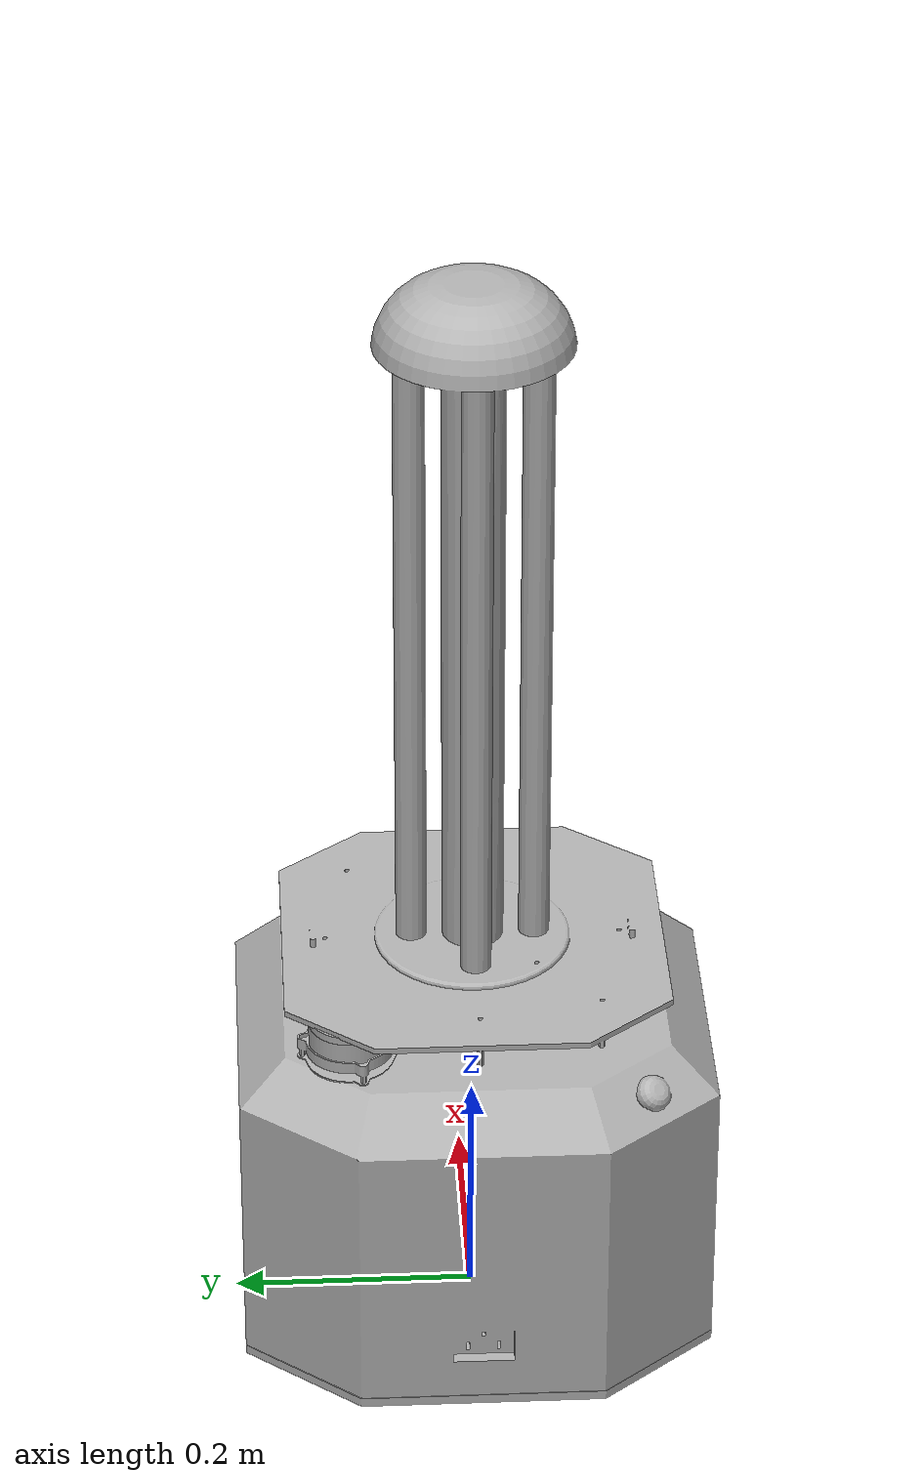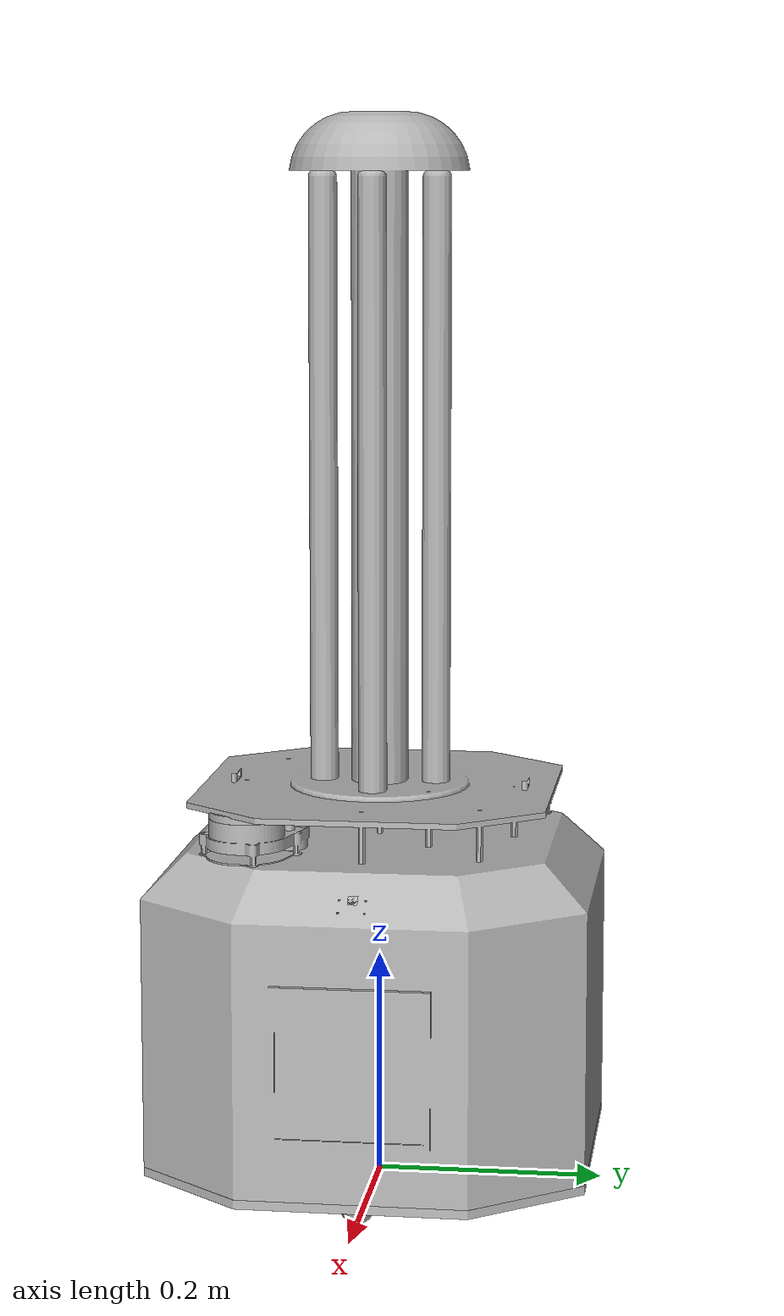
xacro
<?xml version="1.0" ?>
<robot name="uvbot" xmlns:xacro="http://www.ros.org/wiki/xacro">

<xacro:include filename="$(find uvbot_description)/urdf/materials.xacro" />
<xacro:include filename="$(find uvbot_description)/urdf/uvbot.trans" />
<xacro:include filename="$(find uvbot_description)/urdf/uvbot.gazebo" />
<link name="base_link">
  <inertial>
    <origin rpy="0 0 0" xyz="-0.0014212133130561632 -0.00011343264987574764 0.028000406327663995"/>
    <mass value="1.1101034043197626"/>
    <inertia ixx="0.011883" ixy="0.0" ixz="0.0" iyy="0.012525" iyz="0.0" izz="0.02436"/>
  </inertial>
  <visual>
    <origin rpy="0 0 0" xyz="0 0 0"/>
    <geometry>
      <mesh filename="package://uvbot_description/meshes/base_link.stl" scale="0.001 0.001 0.001"/>
    </geometry>
    <material name="silver"/>
  </visual>
  <collision>
    <origin rpy="0 0 0" xyz="0 0 0"/>
    <geometry>
      <mesh filename="package://uvbot_description/meshes/base_link.stl" scale="0.001 0.001 0.001"/>
    </geometry>
  </collision>
</link>

<link name="motor_r_1">
  <inertial>
    <origin rpy="0 0 0" xyz="-2.1330980819948657e-07 0.03894347279223513 -0.008999969522538974"/>
    <mass value="0.5157784078443187"/>
    <inertia ixx="0.000382" ixy="0.0" ixz="0.0" iyy="6e-05" iyz="0.0" izz="0.000382"/>
  </inertial>
  <visual>
    <origin rpy="0 0 0" xyz="0.001421 0.112243 -0.059"/>
    <geometry>
      <mesh filename="package://uvbot_description/meshes/motor_r_1.stl" scale="0.001 0.001 0.001"/>
    </geometry>
    <material name="silver"/>
  </visual>
  <collision>
    <origin rpy="0 0 0" xyz="0.001421 0.112243 -0.059"/>
    <geometry>
      <mesh filename="package://uvbot_description/meshes/motor_r_1.stl" scale="0.001 0.001 0.001"/>
    </geometry>
  </collision>
</link>

<link name="wheel_r_1">
  <inertial>
    <origin rpy="0 0 0" xyz="-2.1330981184132167e-07 0.002157535436141389 3.04774533041452e-08"/>
    <mass value="0.12093530699476142"/>
    <inertia ixx="0.000105" ixy="0.0" ixz="0.0" iyy="0.000198" iyz="-0.0" izz="0.000105"/>
  </inertial>
  <visual>
    <origin rpy="0 0 0" xyz="0.001421 0.135243 -0.05"/>
    <geometry>
      <mesh filename="package://uvbot_description/meshes/wheel_r_1.stl" scale="0.001 0.001 0.001"/>
    </geometry>
    <material name="silver"/>
  </visual>
  <collision>
    <origin rpy="0 0 0" xyz="0.001421 0.135243 -0.05"/>
    <geometry>
      <mesh filename="package://uvbot_description/meshes/wheel_r_1.stl" scale="0.001 0.001 0.001"/>
    </geometry>
  </collision>
</link>

<link name="motor_l_1">
  <inertial>
    <origin rpy="0 0 0" xyz="-2.1330980780462014e-07 -0.03894433809198744 -0.008999969522539182"/>
    <mass value="0.5157784078443183"/>
    <inertia ixx="0.000382" ixy="-0.0" ixz="0.0" iyy="6e-05" iyz="0.0" izz="0.000382"/>
  </inertial>
  <visual>
    <origin rpy="0 0 0" xyz="0.001421 -0.112017 -0.059"/>
    <geometry>
      <mesh filename="package://uvbot_description/meshes/motor_l_1.stl" scale="0.001 0.001 0.001"/>
    </geometry>
    <material name="silver"/>
  </visual>
  <collision>
    <origin rpy="0 0 0" xyz="0.001421 -0.112017 -0.059"/>
    <geometry>
      <mesh filename="package://uvbot_description/meshes/motor_l_1.stl" scale="0.001 0.001 0.001"/>
    </geometry>
  </collision>
</link>

<link name="wheel_l_1">
  <inertial>
    <origin rpy="0 0 0" xyz="-2.1330981772268477e-07 -0.002158400735893684 3.047747294815384e-08"/>
    <mass value="0.12093530699476145"/>
    <inertia ixx="0.000105" ixy="-0.0" ixz="-0.0" iyy="0.000198" iyz="0.0" izz="0.000105"/>
  </inertial>
  <visual>
    <origin rpy="0 0 0" xyz="0.001421 -0.135017 -0.05"/>
    <geometry>
      <mesh filename="package://uvbot_description/meshes/wheel_l_1.stl" scale="0.001 0.001 0.001"/>
    </geometry>
    <material name="silver"/>
  </visual>
  <collision>
    <origin rpy="0 0 0" xyz="0.001421 -0.135017 -0.05"/>
    <geometry>
      <mesh filename="package://uvbot_description/meshes/wheel_l_1.stl" scale="0.001 0.001 0.001"/>
    </geometry>
  </collision>
</link>

<link name="base_1">
  <inertial>
    <origin rpy="0 0 0" xyz="-0.192858256212873 -6.26874464488631e-05 0.16360009422179814"/>
    <mass value="7.280162667028889"/>
    <inertia ixx="0.183177" ixy="-0.00034" ixz="0.000158" iyy="0.183707" iyz="5.3e-05" izz="0.252794"/>
  </inertial>
  <visual>
    <origin rpy="0 0 0" xyz="-0.192459 0.000113 -0.0315"/>
    <geometry>
      <mesh filename="package://uvbot_description/meshes/base_1.stl" scale="0.001 0.001 0.001"/>
    </geometry>
    <material name="silver"/>
  </visual>
  <collision>
    <origin rpy="0 0 0" xyz="-0.192459 0.000113 -0.0315"/>
    <geometry>
      <mesh filename="package://uvbot_description/meshes/base_1.stl" scale="0.001 0.001 0.001"/>
    </geometry>
  </collision>
</link>

<link name="lidar_f_1">
  <inertial>
    <origin rpy="0 0 0" xyz="0.03214138298344821 -0.024220151474410145 0.026522080196952902"/>
    <mass value="0.13221021440082156"/>
    <inertia ixx="6.8e-05" ixy="2.3e-05" ixz="-1.3e-05" iyy="8.2e-05" iyz="1e-05" izz="0.000119"/>
  </inertial>
  <visual>
    <origin rpy="0 0 0" xyz="-0.064185 0.071752 -0.3005"/>
    <geometry>
      <mesh filename="package://uvbot_description/meshes/lidar_f_1.stl" scale="0.001 0.001 0.001"/>
    </geometry>
    <material name="silver"/>
  </visual>
  <collision>
    <origin rpy="0 0 0" xyz="-0.064185 0.071752 -0.3005"/>
    <geometry>
      <mesh filename="package://uvbot_description/meshes/lidar_f_1.stl" scale="0.001 0.001 0.001"/>
    </geometry>
  </collision>
</link>

<link name="lidar_b_1">
  <inertial>
    <origin rpy="0 0 0" xyz="-0.030829732681847175 0.02586910115710056 0.02652208019695307"/>
    <mass value="0.13221021440082098"/>
    <inertia ixx="7.1e-05" ixy="2.4e-05" ixz="1.2e-05" iyy="7.9e-05" iyz="-1e-05" izz="0.000119"/>
  </inertial>
  <visual>
    <origin rpy="0 0 0" xyz="0.066127 -0.071523 -0.3005"/>
    <geometry>
      <mesh filename="package://uvbot_description/meshes/lidar_b_1.stl" scale="0.001 0.001 0.001"/>
    </geometry>
    <material name="silver"/>
  </visual>
  <collision>
    <origin rpy="0 0 0" xyz="0.066127 -0.071523 -0.3005"/>
    <geometry>
      <mesh filename="package://uvbot_description/meshes/lidar_b_1.stl" scale="0.001 0.001 0.001"/>
    </geometry>
  </collision>
</link>

<link name="lidar_f_top_1">
  <inertial>
    <origin rpy="0 0 0" xyz="7.893035522399394e-08 1.380416782825744e-07 0.003250015238730808"/>
    <mass value="0.023287282858453755"/>
    <inertia ixx="6e-06" ixy="0.0" ixz="-0.0" iyy="6e-06" iyz="-0.0" izz="1.3e-05"/>
  </inertial>
  <visual>
    <origin rpy="0 0 0" xyz="-0.104117 0.101843 -0.345"/>
    <geometry>
      <mesh filename="package://uvbot_description/meshes/lidar_f_top_1.stl" scale="0.001 0.001 0.001"/>
    </geometry>
    <material name="silver"/>
  </visual>
  <collision>
    <origin rpy="0 0 0" xyz="-0.104117 0.101843 -0.345"/>
    <geometry>
      <mesh filename="package://uvbot_description/meshes/lidar_f_top_1.stl" scale="0.001 0.001 0.001"/>
    </geometry>
  </collision>
</link>

<link name="lidar_b_top_1">
  <inertial>
    <origin rpy="0 0 0" xyz="4.974962788534265e-07 4.995585063533037e-07 0.0032500152387306414"/>
    <mass value="0.023287282858453925"/>
    <inertia ixx="6e-06" ixy="-0.0" ixz="-0.0" iyy="6e-06" iyz="0.0" izz="1.3e-05"/>
  </inertial>
  <visual>
    <origin rpy="0 0 0" xyz="0.10443 -0.103662 -0.345"/>
    <geometry>
      <mesh filename="package://uvbot_description/meshes/lidar_b_top_1.stl" scale="0.001 0.001 0.001"/>
    </geometry>
    <material name="silver"/>
  </visual>
  <collision>
    <origin rpy="0 0 0" xyz="0.10443 -0.103662 -0.345"/>
    <geometry>
      <mesh filename="package://uvbot_description/meshes/lidar_b_top_1.stl" scale="0.001 0.001 0.001"/>
    </geometry>
  </collision>
</link>

<link name="top_1">
  <inertial>
    <origin rpy="0 0 0" xyz="4.6716132735672745e-07 -4.3264987614011023e-07 0.3428455057608125"/>
    <mass value="2.39405322057488"/>
    <inertia ixx="0.131467" ixy="-8e-06" ixz="0.0" iyy="0.131458" iyz="-0.0" izz="0.009307"/>
  </inertial>
  <visual>
    <origin rpy="0 0 0" xyz="0.001027 0.000113 -0.3105"/>
    <geometry>
      <mesh filename="package://uvbot_description/meshes/top_1.stl" scale="0.001 0.001 0.001"/>
    </geometry>
    <material name="silver"/>
  </visual>
  <collision>
    <origin rpy="0 0 0" xyz="0.001027 0.000113 -0.3105"/>
    <geometry>
      <mesh filename="package://uvbot_description/meshes/top_1.stl" scale="0.001 0.001 0.001"/>
    </geometry>
  </collision>
</link>

<link name="tube1_1">
  <inertial>
    <origin rpy="0 0 0" xyz="4.6716132671639765e-07 -4.32649875529989e-07 -0.26999996952253935"/>
    <mass value="0.5761836728645969"/>
    <inertia ixx="0.013943" ixy="0.0" ixz="-0.0" iyy="0.013943" iyz="-0.0" izz="4.5e-05"/>
  </inertial>
  <visual>
    <origin rpy="0 0 0" xyz="0.001027 -0.049887 -0.8945"/>
    <geometry>
      <mesh filename="package://uvbot_description/meshes/tube1_1.stl" scale="0.001 0.001 0.001"/>
    </geometry>
    <material name="silver"/>
  </visual>
  <collision>
    <origin rpy="0 0 0" xyz="0.001027 -0.049887 -0.8945"/>
    <geometry>
      <mesh filename="package://uvbot_description/meshes/tube1_1.stl" scale="0.001 0.001 0.001"/>
    </geometry>
  </collision>
</link>

<link name="tube2_1">
  <inertial>
    <origin rpy="0 0 0" xyz="4.671613267059893e-07 -4.3264987546936856e-07 -0.269999969522539"/>
    <mass value="0.5761836728645964"/>
    <inertia ixx="0.013943" ixy="-0.0" ixz="-0.0" iyy="0.013943" iyz="-0.0" izz="4.5e-05"/>
  </inertial>
  <visual>
    <origin rpy="0 0 0" xyz="-0.048973 0.000113 -0.8945"/>
    <geometry>
      <mesh filename="package://uvbot_description/meshes/tube2_1.stl" scale="0.001 0.001 0.001"/>
    </geometry>
    <material name="silver"/>
  </visual>
  <collision>
    <origin rpy="0 0 0" xyz="-0.048973 0.000113 -0.8945"/>
    <geometry>
      <mesh filename="package://uvbot_description/meshes/tube2_1.stl" scale="0.001 0.001 0.001"/>
    </geometry>
  </collision>
</link>

<link name="tube3_1">
  <inertial>
    <origin rpy="0 0 0" xyz="4.671613267445869e-07 -4.3264987546753897e-07 -0.26999996952253913"/>
    <mass value="0.5761836728645967"/>
    <inertia ixx="0.013943" ixy="0.0" ixz="-0.0" iyy="0.013943" iyz="-0.0" izz="4.5e-05"/>
  </inertial>
  <visual>
    <origin rpy="0 0 0" xyz="0.001027 0.050113 -0.8945"/>
    <geometry>
      <mesh filename="package://uvbot_description/meshes/tube3_1.stl" scale="0.001 0.001 0.001"/>
    </geometry>
    <material name="silver"/>
  </visual>
  <collision>
    <origin rpy="0 0 0" xyz="0.001027 0.050113 -0.8945"/>
    <geometry>
      <mesh filename="package://uvbot_description/meshes/tube3_1.stl" scale="0.001 0.001 0.001"/>
    </geometry>
  </collision>
</link>

<link name="tube4_1">
  <inertial>
    <origin rpy="0 0 0" xyz="4.671613267059893e-07 -4.3264987547896375e-07 -0.2699999695225386"/>
    <mass value="0.5761836728645964"/>
    <inertia ixx="0.013943" ixy="-0.0" ixz="-0.0" iyy="0.013943" iyz="-0.0" izz="4.5e-05"/>
  </inertial>
  <visual>
    <origin rpy="0 0 0" xyz="0.051027 0.000113 -0.8945"/>
    <geometry>
      <mesh filename="package://uvbot_description/meshes/tube4_1.stl" scale="0.001 0.001 0.001"/>
    </geometry>
    <material name="silver"/>
  </visual>
  <collision>
    <origin rpy="0 0 0" xyz="0.051027 0.000113 -0.8945"/>
    <geometry>
      <mesh filename="package://uvbot_description/meshes/tube4_1.stl" scale="0.001 0.001 0.001"/>
    </geometry>
  </collision>
</link>

<link name="caster2_1">
  <inertial>
    <origin rpy="0 0 0" xyz="-2.1330981525569115e-07 -4.326498762379324e-07 -0.009587822042544021"/>
    <mass value="0.013861515021644047"/>
    <inertia ixx="1e-06" ixy="-0.0" ixz="0.0" iyy="1e-06" iyz="-0.0" izz="1e-06"/>
  </inertial>
  <visual>
    <origin rpy="0 0 0" xyz="0.131421 0.000113 -0.0235"/>
    <geometry>
      <mesh filename="package://uvbot_description/meshes/caster2_1.stl" scale="0.001 0.001 0.001"/>
    </geometry>
    <material name="silver"/>
  </visual>
  <collision>
    <origin rpy="0 0 0" xyz="0.131421 0.000113 -0.0235"/>
    <geometry>
      <mesh filename="package://uvbot_description/meshes/caster2_1.stl" scale="0.001 0.001 0.001"/>
    </geometry>
  </collision>
</link>

<link name="caster1_1">
  <inertial>
    <origin rpy="0 0 0" xyz="-2.1330981536671345e-07 -4.3264987623653646e-07 -0.00958782204254405"/>
    <mass value="0.013861515021644089"/>
    <inertia ixx="1e-06" ixy="0.0" ixz="-0.0" iyy="1e-06" iyz="-0.0" izz="1e-06"/>
  </inertial>
  <visual>
    <origin rpy="0 0 0" xyz="-0.128579 0.000113 -0.0235"/>
    <geometry>
      <mesh filename="package://uvbot_description/meshes/caster1_1.stl" scale="0.001 0.001 0.001"/>
    </geometry>
    <material name="silver"/>
  </visual>
  <collision>
    <origin rpy="0 0 0" xyz="-0.128579 0.000113 -0.0235"/>
    <geometry>
      <mesh filename="package://uvbot_description/meshes/caster1_1.stl" scale="0.001 0.001 0.001"/>
    </geometry>
  </collision>
</link>

<link name="camera_1">
  <inertial>
    <origin rpy="0 0 0" xyz="0.0010435169512081066 0.0021603266423281782 -0.004873889693730815"/>
    <mass value="0.006742854138451138"/>
    <inertia ixx="0.0" ixy="0.0" ixz="0.0" iyy="0.0" iyz="0.0" izz="0.0"/>
  </inertial>
  <visual>
    <origin rpy="0 0 0" xyz="-0.170454 0.000113 -0.294505"/>
    <geometry>
      <mesh filename="package://uvbot_description/meshes/camera_1.stl" scale="0.001 0.001 0.001"/>
    </geometry>
    <material name="silver"/>
  </visual>
  <collision>
    <origin rpy="0 0 0" xyz="-0.170454 0.000113 -0.294505"/>
    <geometry>
      <mesh filename="package://uvbot_description/meshes/camera_1.stl" scale="0.001 0.001 0.001"/>
    </geometry>
  </collision>
</link>

<joint name="Rigid59" type="fixed">
  <origin rpy="0 0 0" xyz="-0.001421 -0.112243 0.059"/>
  <parent link="base_link"/>
  <child link="motor_r_1"/>
</joint>

<joint name="Rev60" type="continuous">
  <origin rpy="0 0 0" xyz="0.0 -0.023 -0.009"/>
  <parent link="motor_r_1"/>
  <child link="wheel_r_1"/>
  <axis xyz="0.0 1.0 0.0"/>
</joint>

<joint name="Rigid61" type="fixed">
  <origin rpy="0 0 0" xyz="-0.001421 0.112017 0.059"/>
  <parent link="base_link"/>
  <child link="motor_l_1"/>
</joint>

<joint name="Rev62" type="continuous">
  <origin rpy="0 0 0" xyz="0.0 0.023 -0.009"/>
  <parent link="motor_l_1"/>
  <child link="wheel_l_1"/>
  <axis xyz="0.0 1.0 0.0"/>
</joint>

<joint name="Rigid63" type="fixed">
  <origin rpy="0 0 0" xyz="0.192459 -0.000113 0.0315"/>
  <parent link="base_link"/>
  <child link="base_1"/>
</joint>

<joint name="Rigid64" type="fixed">
  <origin rpy="0 0 0" xyz="-0.128274 -0.071639 0.269"/>
  <parent link="base_1"/>
  <child link="lidar_f_1"/>
</joint>

<joint name="Rigid65" type="fixed">
  <origin rpy="0 0 0" xyz="-0.258586 0.071636 0.269"/>
  <parent link="base_1"/>
  <child link="lidar_b_1"/>
</joint>

<joint name="Rigid66" type="fixed">
  <origin rpy="0 0 0" xyz="0.039932 -0.030091 0.0445"/>
  <parent link="lidar_f_1"/>
  <child link="lidar_f_top_1"/>
</joint>

<joint name="Rigid67" type="fixed">
  <origin rpy="0 0 0" xyz="-0.038303 0.032139 0.0445"/>
  <parent link="lidar_b_1"/>
  <child link="lidar_b_top_1"/>
</joint>

<joint name="Rigid68" type="fixed">
  <origin rpy="0 0 0" xyz="-0.193486 0.0 0.279"/>
  <parent link="base_1"/>
  <child link="top_1"/>
</joint>

<joint name="Rigid72" type="fixed">
  <origin rpy="0 0 0" xyz="0.0 0.05 0.584"/>
  <parent link="top_1"/>
  <child link="tube1_1"/>
</joint>

<joint name="Rigid73" type="fixed">
  <origin rpy="0 0 0" xyz="0.05 0.0 0.584"/>
  <parent link="top_1"/>
  <child link="tube2_1"/>
</joint>

<joint name="Rigid74" type="fixed">
  <origin rpy="0 0 0" xyz="0.0 -0.05 0.584"/>
  <parent link="top_1"/>
  <child link="tube3_1"/>
</joint>

<joint name="Rigid75" type="fixed">
  <origin rpy="0 0 0" xyz="-0.05 0.0 0.584"/>
  <parent link="top_1"/>
  <child link="tube4_1"/>
</joint>

<joint name="Rigid76" type="fixed">
  <origin rpy="0 0 0" xyz="-0.131421 -0.000113 0.0235"/>
  <parent link="base_link"/>
  <child link="caster2_1"/>
</joint>

<joint name="Rigid77" type="fixed">
  <origin rpy="0 0 0" xyz="0.128579 -0.000113 0.0235"/>
  <parent link="base_link"/>
  <child link="caster1_1"/>
</joint>

<joint name="Rigid79" type="fixed">
  <origin rpy="0 0 0" xyz="-0.022005 0.0 0.263005"/>
  <parent link="base_1"/>
  <child link="camera_1"/>
</joint>

</robot>

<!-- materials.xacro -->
<robot name="uvbot" xmlns:xacro="http://www.ros.org/wiki/xacro" >

<material name="silver">
  <color rgba="0.700 0.700 0.700 1.000"/>
</material>

</robot>

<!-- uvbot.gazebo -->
<robot name="uvbot" xmlns:xacro="http://www.ros.org/wiki/xacro" >

<xacro:property name="body_color" value="Gazebo/Silver" />

<gazebo>
  <plugin filename="libgazebo_ros_control.so" name="control"/>
</gazebo>

<xacro:property name="body_color" value="Gazebo/Black" />
<xacro:property name="motor_color" value="Gazebo/DarkGrey" />
<xacro:property name="wheel_color" value="Gazebo/Grey" />
<xacro:property name="uv_color" value="Gazebo/BlueGlow " />
<xacro:property name="lidar_color" value="Gazebo/Blue " />

  <gazebo>
    <plugin name="differential_drive_controller" filename="libgazebo_ros_diff_drive.so">
      <legacyMode>true</legacyMode>
      <alwaysOn>true</alwaysOn>
      <updateRate>20</updateRate>
      <leftJoint>Rev60</leftJoint>
      <rightJoint>Rev62</rightJoint>
      <wheelSeparation>0.22</wheelSeparation>
      <wheelDiameter>0.1</wheelDiameter>
      <torque>100</torque>
      <commandTopic>cmd_vel</commandTopic>
      <odometryTopic>odom</odometryTopic>
      <odometryFrame>odom</odometryFrame>
      <robotBaseFrame>base_link</robotBaseFrame>
    </plugin>
  </gazebo>

<gazebo reference="lidar_f_top_1">
    <sensor type="ray" name="ydlidar_sensor">
      <pose>0 0 0 0 0 0</pose>
      <visualize>false</visualize>
      <update_rate>40</update_rate>
      <ray>
        <scan>
          <horizontal>
            <samples>720</samples>
            <resolution>1</resolution>
            <min_angle>-3.14</min_angle>
            <max_angle>3.14</max_angle>
          </horizontal>
        </scan>
        <range>
          <min>0.05</min>
          <max>15.0</max>
          <resolution>0.01</resolution>
        </range>
        <noise>
          <type>gaussian</type>
          <mean>0.0</mean>
          <stddev>0.01</stddev>
        </noise>
      </ray>
      <plugin name="gazebo_ros_head_hokuyo_controller" filename="libgazebo_ros_laser.so">
        <topicName>/laserscan1</topicName>
        <frameName>lidar_f_top_1</frameName>
      </plugin>
    </sensor>
  </gazebo>

  <gazebo reference="lidar_b_top_1">
    <sensor type="ray" name="ydlidar_sensor1">
      <pose>0 0 0 0 0 0</pose>
      <visualize>false</visualize>
      <update_rate>40</update_rate>
      <ray>
        <scan>
          <horizontal>
            <samples>720</samples>
            <resolution>1</resolution>
            <min_angle>-3.14</min_angle>
            <max_angle>3.14</max_angle>
          </horizontal>
        </scan>
        <range>
          <min>0.05</min>
          <max>15.0</max>
          <resolution>0.01</resolution>
        </range>
        <noise>
          <type>gaussian</type>
          <mean>0.0</mean>
          <stddev>0.01</stddev>
        </noise>
      </ray>
      <plugin name="gazebo_ros_head_hokuyo_controller" filename="libgazebo_ros_laser.so">
        <topicName>/laserscan2</topicName>
        <frameName>lidar_b_top_1</frameName>
      </plugin>
    </sensor>
  </gazebo>

<gazebo reference="top_1">
    <gravity>true</gravity>
    <sensor name="imu_sensor" type="imu">
      <always_on>true</always_on>
      <update_rate>100</update_rate>
      <visualize>True</visualize>
      <topic>__default_topic__</topic>
      <plugin filename="libgazebo_ros_imu_sensor.so" name="imu_plugin">
        <topicName>imu</topicName>
        <bodyName>lidar_base_1</bodyName>
        <updateRateHZ>10.0</updateRateHZ>
        <gaussianNoise>0.0</gaussianNoise>
        <xyzOffset>0 0 0</xyzOffset>
        <rpyOffset>0 0 0</rpyOffset>
        <frameName>lidar_1</frameName>
        <initialOrientationAsReference>false</initialOrientationAsReference>
      </plugin>
      <pose>0 0 0 0 0 0</pose>
    </sensor>
  </gazebo>

  <gazebo reference="camera_1">
    <sensor type="camera" name="camera1">
      <update_rate>30.0</update_rate>
      <camera name="head">
        <horizontal_fov>1.3962634</horizontal_fov>
        <image>
          <width>800</width>
          <height>800</height>
          <format>R8G8B8</format>
        </image>
        <clip>
          <near>0.02</near>
          <far>300</far>
        </clip>
        <noise>
          <type>gaussian</type>
          <mean>0.0</mean>
          <stddev>0.007</stddev>
        </noise>
      </camera>
      <plugin name="camera_controller" filename="libgazebo_ros_camera.so">
        <alwaysOn>true</alwaysOn>
        <updateRate>0.0</updateRate>
        <cameraName>uvbot/camera1</cameraName>
    <imageTopicName>image_raw</imageTopicName>
        <cameraInfoTopicName>camera_info</cameraInfoTopicName>
        <frameName>camera_1</frameName>
        <hackBaseline>0.07</hackBaseline>
        <distortionK1>0.0</distortionK1>
        <distortionK2>0.0</distortionK2>
        <distortionK3>0.0</distortionK3>
        <distortionT1>0.0</distortionT1>
        <distortionT2>0.0</distortionT2>
      </plugin>
    </sensor>
  </gazebo>

<gazebo reference="base_link">
  <material>${body_color}</material>
  <mu1>1.0</mu1>
  <mu2>1.0</mu2>
  <selfCollide>true</selfCollide>
  <gravity>true</gravity>
</gazebo>

<gazebo reference="motor_r_1">
  <material>${motor_color}</material>
  <mu1>1.0</mu1>
  <mu2>1.0</mu2>
  <selfCollide>true</selfCollide>
</gazebo>

<gazebo reference="wheel_r_1">
  <material>${wheel_color}</material>
  <mu1>10.0</mu1>
  <mu2>20.0</mu2>
  <selfCollide>true</selfCollide>
</gazebo>

<gazebo reference="motor_l_1">
  <material>${motor_color}</material>
  <mu1>1.0</mu1>
  <mu2>1.0</mu2>
  <selfCollide>true</selfCollide>
</gazebo>

<gazebo reference="wheel_l_1">
  <material>${wheel_color}</material>
  <mu1>10.0</mu1>
  <mu2>20.0</mu2>
  <selfCollide>true</selfCollide>
</gazebo>

<gazebo reference="base_1">
  <material>${body_color}</material>
  <mu1>1.0</mu1>
  <mu2>1.0</mu2>
  <selfCollide>true</selfCollide>
</gazebo>

<gazebo reference="lidar_f_1">
  <material>${lidar_color}</material>
  <mu1>1.0</mu1>
  <mu2>1.0</mu2>
  <selfCollide>true</selfCollide>
</gazebo>

<gazebo reference="lidar_b_1">
  <material>${lidar_color}</material>
  <mu1>1.0</mu1>
  <mu2>1.0</mu2>
  <selfCollide>true</selfCollide>
</gazebo>

<gazebo reference="lidar_f_top_1">
  <material>${lidar_color}</material>
  <mu1>1.0</mu1>
  <mu2>1.0</mu2>
  <selfCollide>true</selfCollide>
</gazebo>

<gazebo reference="lidar_b_top_1">
  <material>${lidar_color}</material>
  <mu1>1.0</mu1>
  <mu2>1.0</mu2>
  <selfCollide>true</selfCollide>
</gazebo>

<gazebo reference="top_1">
  <material>${body_color}</material>
  <mu1>1.0</mu1>
  <mu2>1.0</mu2>
  <selfCollide>true</selfCollide>
</gazebo>

<gazebo reference="tube1_1">
  <material>${uv_color}</material>
  <mu1>1.0</mu1>
  <mu2>1.0</mu2>
  <selfCollide>true</selfCollide>
</gazebo>

<gazebo reference="tube2_1">
  <material>${uv_color}</material>
  <mu1>1.0</mu1>
  <mu2>1.0</mu2>
  <selfCollide>true</selfCollide>
</gazebo>

<gazebo reference="tube3_1">
  <material>${uv_color}</material>
  <mu1>1.0</mu1>
  <mu2>1.0</mu2>
  <selfCollide>true</selfCollide>
</gazebo>

<gazebo reference="tube4_1">
  <material>${uv_color}</material>
  <mu1>1.0</mu1>
  <mu2>1.0</mu2>
  <selfCollide>true</selfCollide>
</gazebo>

<gazebo reference="caster2_1">
  <material>${body_color}</material>
  <mu1>0.1</mu1>
  <mu2>0.1</mu2>
  <selfCollide>true</selfCollide>
</gazebo>

<gazebo reference="caster1_1">
  <material>${body_color}</material>
  <mu1>0.1</mu1>
  <mu2>0.1</mu2>
  <selfCollide>true</selfCollide>
</gazebo>

<gazebo reference="camera_1">
  <material>${body_color}</material>
  <mu1>1.0</mu1>
  <mu2>1.0</mu2>
  <selfCollide>true</selfCollide>
</gazebo>

</robot>
